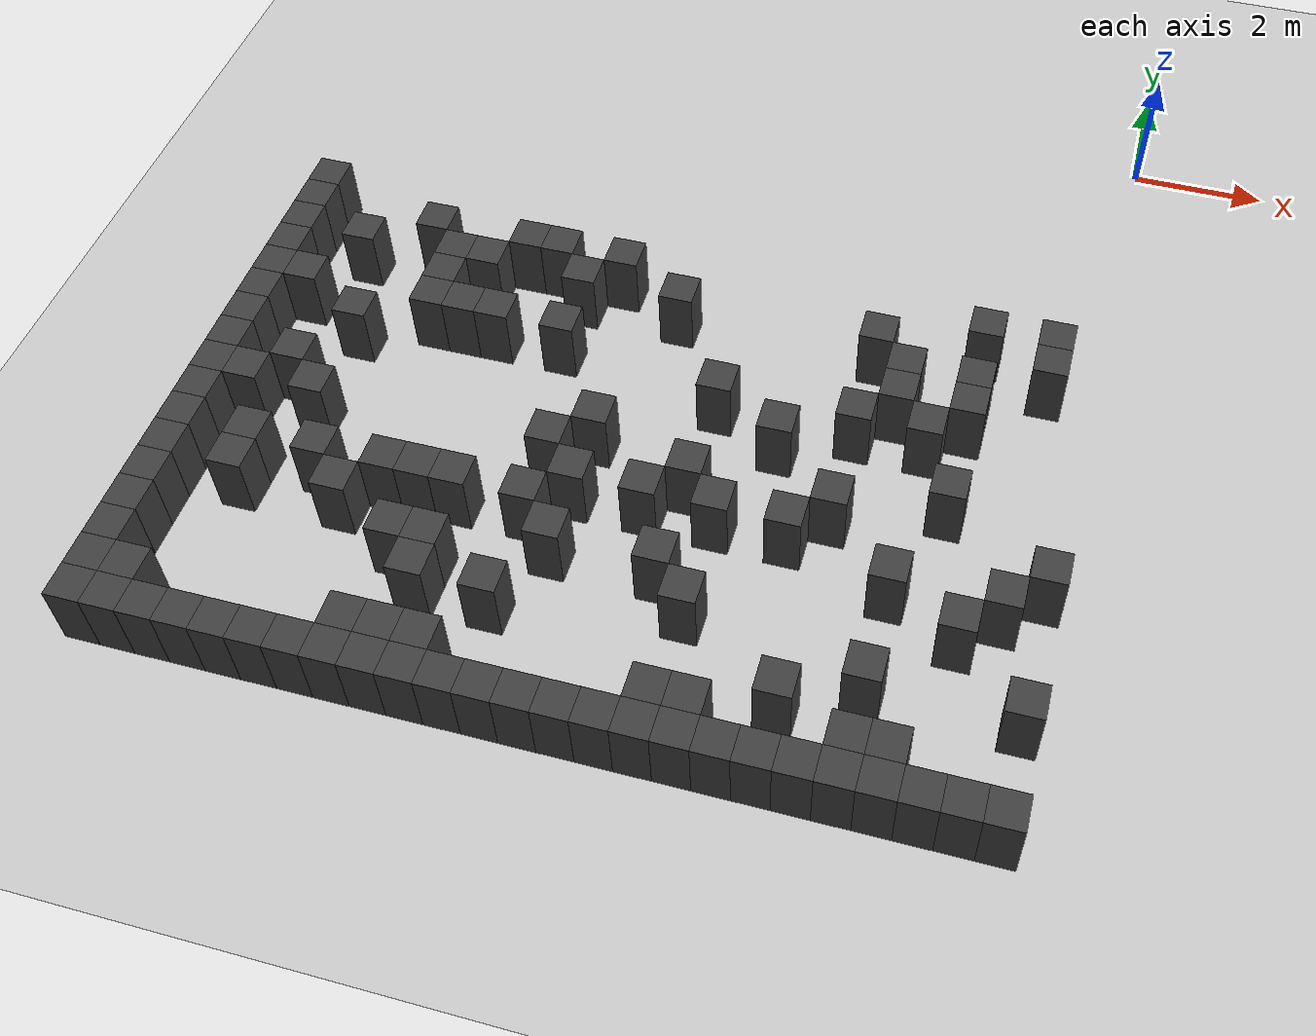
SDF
<sdf version="1.7">
 <world name="map_4225">
  <model name="ground_plane">
   <static>true</static>
   <link name="link">
    <collision name="collision">
     <geometry><plane><normal>0 0 1</normal><size>200 200</size></plane></geometry>
    </collision>
    <visual name="visual">
     <geometry><plane><normal>0 0 1</normal><size>200 200</size></plane></geometry>
     <material><ambient>0.8 0.8 0.8 1</ambient><diffuse>0.8 0.8 0.8 1</diffuse></material>
    </visual>
   </link>
  </model>
  <model name="maze_environment">
   <static>true</static>
   <link name="wall_423">
    <pose>-12.250 -4.250 0.500 0 0 0</pose>
    <collision name="col"><geometry><box><size>0.5 0.5 1.0</size></box></geometry></collision>
    <visual name="vis">
     <geometry><box><size>0.5 0.5 1.0</size></box></geometry>
     <material><ambient>0.15 0.15 0.15 1</ambient><diffuse>0.25 0.25 0.25 1</diffuse></material>
    </visual>
   </link>
   <link name="wall_434">
    <pose>-12.250 -4.750 0.500 0 0 0</pose>
    <collision name="col"><geometry><box><size>0.5 0.5 1.0</size></box></geometry></collision>
    <visual name="vis">
     <geometry><box><size>0.5 0.5 1.0</size></box></geometry>
     <material><ambient>0.15 0.15 0.15 1</ambient><diffuse>0.25 0.25 0.25 1</diffuse></material>
    </visual>
   </link>
   <link name="wall_435">
    <pose>-10.250 -4.750 0.500 0 0 0</pose>
    <collision name="col"><geometry><box><size>0.5 0.5 1.0</size></box></geometry></collision>
    <visual name="vis">
     <geometry><box><size>0.5 0.5 1.0</size></box></geometry>
     <material><ambient>0.15 0.15 0.15 1</ambient><diffuse>0.25 0.25 0.25 1</diffuse></material>
    </visual>
   </link>
   <link name="wall_436">
    <pose>-8.750 -4.750 0.500 0 0 0</pose>
    <collision name="col"><geometry><box><size>0.5 0.5 1.0</size></box></geometry></collision>
    <visual name="vis">
     <geometry><box><size>0.5 0.5 1.0</size></box></geometry>
     <material><ambient>0.15 0.15 0.15 1</ambient><diffuse>0.25 0.25 0.25 1</diffuse></material>
    </visual>
   </link>
   <link name="wall_437">
    <pose>-8.250 -4.750 0.500 0 0 0</pose>
    <collision name="col"><geometry><box><size>0.5 0.5 1.0</size></box></geometry></collision>
    <visual name="vis">
     <geometry><box><size>0.5 0.5 1.0</size></box></geometry>
     <material><ambient>0.15 0.15 0.15 1</ambient><diffuse>0.25 0.25 0.25 1</diffuse></material>
    </visual>
   </link>
   <link name="wall_438">
    <pose>-7.250 -4.750 0.500 0 0 0</pose>
    <collision name="col"><geometry><box><size>0.5 0.5 1.0</size></box></geometry></collision>
    <visual name="vis">
     <geometry><box><size>0.5 0.5 1.0</size></box></geometry>
     <material><ambient>0.15 0.15 0.15 1</ambient><diffuse>0.25 0.25 0.25 1</diffuse></material>
    </visual>
   </link>
   <link name="wall_439">
    <pose>-1.750 -4.750 0.500 0 0 0</pose>
    <collision name="col"><geometry><box><size>0.5 0.5 1.0</size></box></geometry></collision>
    <visual name="vis">
     <geometry><box><size>0.5 0.5 1.0</size></box></geometry>
     <material><ambient>0.15 0.15 0.15 1</ambient><diffuse>0.25 0.25 0.25 1</diffuse></material>
    </visual>
   </link>
   <link name="wall_440">
    <pose>-0.750 -4.750 0.500 0 0 0</pose>
    <collision name="col"><geometry><box><size>0.5 0.5 1.0</size></box></geometry></collision>
    <visual name="vis">
     <geometry><box><size>0.5 0.5 1.0</size></box></geometry>
     <material><ambient>0.15 0.15 0.15 1</ambient><diffuse>0.25 0.25 0.25 1</diffuse></material>
    </visual>
   </link>
   <link name="wall_449">
    <pose>-12.250 -5.250 0.500 0 0 0</pose>
    <collision name="col"><geometry><box><size>0.5 0.5 1.0</size></box></geometry></collision>
    <visual name="vis">
     <geometry><box><size>0.5 0.5 1.0</size></box></geometry>
     <material><ambient>0.15 0.15 0.15 1</ambient><diffuse>0.25 0.25 0.25 1</diffuse></material>
    </visual>
   </link>
   <link name="wall_450">
    <pose>-11.250 -5.250 0.500 0 0 0</pose>
    <collision name="col"><geometry><box><size>0.5 0.5 1.0</size></box></geometry></collision>
    <visual name="vis">
     <geometry><box><size>0.5 0.5 1.0</size></box></geometry>
     <material><ambient>0.15 0.15 0.15 1</ambient><diffuse>0.25 0.25 0.25 1</diffuse></material>
    </visual>
   </link>
   <link name="wall_451">
    <pose>-9.750 -5.250 0.500 0 0 0</pose>
    <collision name="col"><geometry><box><size>0.5 0.5 1.0</size></box></geometry></collision>
    <visual name="vis">
     <geometry><box><size>0.5 0.5 1.0</size></box></geometry>
     <material><ambient>0.15 0.15 0.15 1</ambient><diffuse>0.25 0.25 0.25 1</diffuse></material>
    </visual>
   </link>
   <link name="wall_452">
    <pose>-9.250 -5.250 0.500 0 0 0</pose>
    <collision name="col"><geometry><box><size>0.5 0.5 1.0</size></box></geometry></collision>
    <visual name="vis">
     <geometry><box><size>0.5 0.5 1.0</size></box></geometry>
     <material><ambient>0.15 0.15 0.15 1</ambient><diffuse>0.25 0.25 0.25 1</diffuse></material>
    </visual>
   </link>
   <link name="wall_453">
    <pose>-7.750 -5.250 0.500 0 0 0</pose>
    <collision name="col"><geometry><box><size>0.5 0.5 1.0</size></box></geometry></collision>
    <visual name="vis">
     <geometry><box><size>0.5 0.5 1.0</size></box></geometry>
     <material><ambient>0.15 0.15 0.15 1</ambient><diffuse>0.25 0.25 0.25 1</diffuse></material>
    </visual>
   </link>
   <link name="wall_454">
    <pose>-6.250 -5.250 0.500 0 0 0</pose>
    <collision name="col"><geometry><box><size>0.5 0.5 1.0</size></box></geometry></collision>
    <visual name="vis">
     <geometry><box><size>0.5 0.5 1.0</size></box></geometry>
     <material><ambient>0.15 0.15 0.15 1</ambient><diffuse>0.25 0.25 0.25 1</diffuse></material>
    </visual>
   </link>
   <link name="wall_455">
    <pose>-3.250 -5.250 0.500 0 0 0</pose>
    <collision name="col"><geometry><box><size>0.5 0.5 1.0</size></box></geometry></collision>
    <visual name="vis">
     <geometry><box><size>0.5 0.5 1.0</size></box></geometry>
     <material><ambient>0.15 0.15 0.15 1</ambient><diffuse>0.25 0.25 0.25 1</diffuse></material>
    </visual>
   </link>
   <link name="wall_456">
    <pose>-0.750 -5.250 0.500 0 0 0</pose>
    <collision name="col"><geometry><box><size>0.5 0.5 1.0</size></box></geometry></collision>
    <visual name="vis">
     <geometry><box><size>0.5 0.5 1.0</size></box></geometry>
     <material><ambient>0.15 0.15 0.15 1</ambient><diffuse>0.25 0.25 0.25 1</diffuse></material>
    </visual>
   </link>
   <link name="wall_464">
    <pose>-12.250 -5.750 0.500 0 0 0</pose>
    <collision name="col"><geometry><box><size>0.5 0.5 1.0</size></box></geometry></collision>
    <visual name="vis">
     <geometry><box><size>0.5 0.5 1.0</size></box></geometry>
     <material><ambient>0.15 0.15 0.15 1</ambient><diffuse>0.25 0.25 0.25 1</diffuse></material>
    </visual>
   </link>
   <link name="wall_465">
    <pose>-9.750 -5.750 0.500 0 0 0</pose>
    <collision name="col"><geometry><box><size>0.5 0.5 1.0</size></box></geometry></collision>
    <visual name="vis">
     <geometry><box><size>0.5 0.5 1.0</size></box></geometry>
     <material><ambient>0.15 0.15 0.15 1</ambient><diffuse>0.25 0.25 0.25 1</diffuse></material>
    </visual>
   </link>
   <link name="wall_466">
    <pose>-2.750 -5.750 0.500 0 0 0</pose>
    <collision name="col"><geometry><box><size>0.5 0.5 1.0</size></box></geometry></collision>
    <visual name="vis">
     <geometry><box><size>0.5 0.5 1.0</size></box></geometry>
     <material><ambient>0.15 0.15 0.15 1</ambient><diffuse>0.25 0.25 0.25 1</diffuse></material>
    </visual>
   </link>
   <link name="wall_467">
    <pose>-1.750 -5.750 0.500 0 0 0</pose>
    <collision name="col"><geometry><box><size>0.5 0.5 1.0</size></box></geometry></collision>
    <visual name="vis">
     <geometry><box><size>0.5 0.5 1.0</size></box></geometry>
     <material><ambient>0.15 0.15 0.15 1</ambient><diffuse>0.25 0.25 0.25 1</diffuse></material>
    </visual>
   </link>
   <link name="wall_476">
    <pose>-12.250 -6.250 0.500 0 0 0</pose>
    <collision name="col"><geometry><box><size>0.5 0.5 1.0</size></box></geometry></collision>
    <visual name="vis">
     <geometry><box><size>0.5 0.5 1.0</size></box></geometry>
     <material><ambient>0.15 0.15 0.15 1</ambient><diffuse>0.25 0.25 0.25 1</diffuse></material>
    </visual>
   </link>
   <link name="wall_477">
    <pose>-11.750 -6.250 0.500 0 0 0</pose>
    <collision name="col"><geometry><box><size>0.5 0.5 1.0</size></box></geometry></collision>
    <visual name="vis">
     <geometry><box><size>0.5 0.5 1.0</size></box></geometry>
     <material><ambient>0.15 0.15 0.15 1</ambient><diffuse>0.25 0.25 0.25 1</diffuse></material>
    </visual>
   </link>
   <link name="wall_478">
    <pose>-9.750 -6.250 0.500 0 0 0</pose>
    <collision name="col"><geometry><box><size>0.5 0.5 1.0</size></box></geometry></collision>
    <visual name="vis">
     <geometry><box><size>0.5 0.5 1.0</size></box></geometry>
     <material><ambient>0.15 0.15 0.15 1</ambient><diffuse>0.25 0.25 0.25 1</diffuse></material>
    </visual>
   </link>
   <link name="wall_479">
    <pose>-9.250 -6.250 0.500 0 0 0</pose>
    <collision name="col"><geometry><box><size>0.5 0.5 1.0</size></box></geometry></collision>
    <visual name="vis">
     <geometry><box><size>0.5 0.5 1.0</size></box></geometry>
     <material><ambient>0.15 0.15 0.15 1</ambient><diffuse>0.25 0.25 0.25 1</diffuse></material>
    </visual>
   </link>
   <link name="wall_480">
    <pose>-8.750 -6.250 0.500 0 0 0</pose>
    <collision name="col"><geometry><box><size>0.5 0.5 1.0</size></box></geometry></collision>
    <visual name="vis">
     <geometry><box><size>0.5 0.5 1.0</size></box></geometry>
     <material><ambient>0.15 0.15 0.15 1</ambient><diffuse>0.25 0.25 0.25 1</diffuse></material>
    </visual>
   </link>
   <link name="wall_481">
    <pose>-7.750 -6.250 0.500 0 0 0</pose>
    <collision name="col"><geometry><box><size>0.5 0.5 1.0</size></box></geometry></collision>
    <visual name="vis">
     <geometry><box><size>0.5 0.5 1.0</size></box></geometry>
     <material><ambient>0.15 0.15 0.15 1</ambient><diffuse>0.25 0.25 0.25 1</diffuse></material>
    </visual>
   </link>
   <link name="wall_482">
    <pose>-2.750 -6.250 0.500 0 0 0</pose>
    <collision name="col"><geometry><box><size>0.5 0.5 1.0</size></box></geometry></collision>
    <visual name="vis">
     <geometry><box><size>0.5 0.5 1.0</size></box></geometry>
     <material><ambient>0.15 0.15 0.15 1</ambient><diffuse>0.25 0.25 0.25 1</diffuse></material>
    </visual>
   </link>
   <link name="wall_483">
    <pose>-1.750 -6.250 0.500 0 0 0</pose>
    <collision name="col"><geometry><box><size>0.5 0.5 1.0</size></box></geometry></collision>
    <visual name="vis">
     <geometry><box><size>0.5 0.5 1.0</size></box></geometry>
     <material><ambient>0.15 0.15 0.15 1</ambient><diffuse>0.25 0.25 0.25 1</diffuse></material>
    </visual>
   </link>
   <link name="wall_492">
    <pose>-12.250 -6.750 0.500 0 0 0</pose>
    <collision name="col"><geometry><box><size>0.5 0.5 1.0</size></box></geometry></collision>
    <visual name="vis">
     <geometry><box><size>0.5 0.5 1.0</size></box></geometry>
     <material><ambient>0.15 0.15 0.15 1</ambient><diffuse>0.25 0.25 0.25 1</diffuse></material>
    </visual>
   </link>
   <link name="wall_493">
    <pose>-10.750 -6.750 0.500 0 0 0</pose>
    <collision name="col"><geometry><box><size>0.5 0.5 1.0</size></box></geometry></collision>
    <visual name="vis">
     <geometry><box><size>0.5 0.5 1.0</size></box></geometry>
     <material><ambient>0.15 0.15 0.15 1</ambient><diffuse>0.25 0.25 0.25 1</diffuse></material>
    </visual>
   </link>
   <link name="wall_494">
    <pose>-5.250 -6.750 0.500 0 0 0</pose>
    <collision name="col"><geometry><box><size>0.5 0.5 1.0</size></box></geometry></collision>
    <visual name="vis">
     <geometry><box><size>0.5 0.5 1.0</size></box></geometry>
     <material><ambient>0.15 0.15 0.15 1</ambient><diffuse>0.25 0.25 0.25 1</diffuse></material>
    </visual>
   </link>
   <link name="wall_495">
    <pose>-3.250 -6.750 0.500 0 0 0</pose>
    <collision name="col"><geometry><box><size>0.5 0.5 1.0</size></box></geometry></collision>
    <visual name="vis">
     <geometry><box><size>0.5 0.5 1.0</size></box></geometry>
     <material><ambient>0.15 0.15 0.15 1</ambient><diffuse>0.25 0.25 0.25 1</diffuse></material>
    </visual>
   </link>
   <link name="wall_496">
    <pose>-2.250 -6.750 0.500 0 0 0</pose>
    <collision name="col"><geometry><box><size>0.5 0.5 1.0</size></box></geometry></collision>
    <visual name="vis">
     <geometry><box><size>0.5 0.5 1.0</size></box></geometry>
     <material><ambient>0.15 0.15 0.15 1</ambient><diffuse>0.25 0.25 0.25 1</diffuse></material>
    </visual>
   </link>
   <link name="wall_501">
    <pose>-12.250 -7.250 0.500 0 0 0</pose>
    <collision name="col"><geometry><box><size>0.5 0.5 1.0</size></box></geometry></collision>
    <visual name="vis">
     <geometry><box><size>0.5 0.5 1.0</size></box></geometry>
     <material><ambient>0.15 0.15 0.15 1</ambient><diffuse>0.25 0.25 0.25 1</diffuse></material>
    </visual>
   </link>
   <link name="wall_502">
    <pose>-4.250 -7.250 0.500 0 0 0</pose>
    <collision name="col"><geometry><box><size>0.5 0.5 1.0</size></box></geometry></collision>
    <visual name="vis">
     <geometry><box><size>0.5 0.5 1.0</size></box></geometry>
     <material><ambient>0.15 0.15 0.15 1</ambient><diffuse>0.25 0.25 0.25 1</diffuse></material>
    </visual>
   </link>
   <link name="wall_508">
    <pose>-12.250 -7.750 0.500 0 0 0</pose>
    <collision name="col"><geometry><box><size>0.5 0.5 1.0</size></box></geometry></collision>
    <visual name="vis">
     <geometry><box><size>0.5 0.5 1.0</size></box></geometry>
     <material><ambient>0.15 0.15 0.15 1</ambient><diffuse>0.25 0.25 0.25 1</diffuse></material>
    </visual>
   </link>
   <link name="wall_509">
    <pose>-11.250 -7.750 0.500 0 0 0</pose>
    <collision name="col"><geometry><box><size>0.5 0.5 1.0</size></box></geometry></collision>
    <visual name="vis">
     <geometry><box><size>0.5 0.5 1.0</size></box></geometry>
     <material><ambient>0.15 0.15 0.15 1</ambient><diffuse>0.25 0.25 0.25 1</diffuse></material>
    </visual>
   </link>
   <link name="wall_510">
    <pose>-6.750 -7.750 0.500 0 0 0</pose>
    <collision name="col"><geometry><box><size>0.5 0.5 1.0</size></box></geometry></collision>
    <visual name="vis">
     <geometry><box><size>0.5 0.5 1.0</size></box></geometry>
     <material><ambient>0.15 0.15 0.15 1</ambient><diffuse>0.25 0.25 0.25 1</diffuse></material>
    </visual>
   </link>
   <link name="wall_511">
    <pose>-1.750 -7.750 0.500 0 0 0</pose>
    <collision name="col"><geometry><box><size>0.5 0.5 1.0</size></box></geometry></collision>
    <visual name="vis">
     <geometry><box><size>0.5 0.5 1.0</size></box></geometry>
     <material><ambient>0.15 0.15 0.15 1</ambient><diffuse>0.25 0.25 0.25 1</diffuse></material>
    </visual>
   </link>
   <link name="wall_520">
    <pose>-12.250 -8.250 0.500 0 0 0</pose>
    <collision name="col"><geometry><box><size>0.5 0.5 1.0</size></box></geometry></collision>
    <visual name="vis">
     <geometry><box><size>0.5 0.5 1.0</size></box></geometry>
     <material><ambient>0.15 0.15 0.15 1</ambient><diffuse>0.25 0.25 0.25 1</diffuse></material>
    </visual>
   </link>
   <link name="wall_521">
    <pose>-11.750 -8.250 0.500 0 0 0</pose>
    <collision name="col"><geometry><box><size>0.5 0.5 1.0</size></box></geometry></collision>
    <visual name="vis">
     <geometry><box><size>0.5 0.5 1.0</size></box></geometry>
     <material><ambient>0.15 0.15 0.15 1</ambient><diffuse>0.25 0.25 0.25 1</diffuse></material>
    </visual>
   </link>
   <link name="wall_522">
    <pose>-10.750 -8.250 0.500 0 0 0</pose>
    <collision name="col"><geometry><box><size>0.5 0.5 1.0</size></box></geometry></collision>
    <visual name="vis">
     <geometry><box><size>0.5 0.5 1.0</size></box></geometry>
     <material><ambient>0.15 0.15 0.15 1</ambient><diffuse>0.25 0.25 0.25 1</diffuse></material>
    </visual>
   </link>
   <link name="wall_523">
    <pose>-7.250 -8.250 0.500 0 0 0</pose>
    <collision name="col"><geometry><box><size>0.5 0.5 1.0</size></box></geometry></collision>
    <visual name="vis">
     <geometry><box><size>0.5 0.5 1.0</size></box></geometry>
     <material><ambient>0.15 0.15 0.15 1</ambient><diffuse>0.25 0.25 0.25 1</diffuse></material>
    </visual>
   </link>
   <link name="wall_524">
    <pose>-5.250 -8.250 0.500 0 0 0</pose>
    <collision name="col"><geometry><box><size>0.5 0.5 1.0</size></box></geometry></collision>
    <visual name="vis">
     <geometry><box><size>0.5 0.5 1.0</size></box></geometry>
     <material><ambient>0.15 0.15 0.15 1</ambient><diffuse>0.25 0.25 0.25 1</diffuse></material>
    </visual>
   </link>
   <link name="wall_525">
    <pose>-3.250 -8.250 0.500 0 0 0</pose>
    <collision name="col"><geometry><box><size>0.5 0.5 1.0</size></box></geometry></collision>
    <visual name="vis">
     <geometry><box><size>0.5 0.5 1.0</size></box></geometry>
     <material><ambient>0.15 0.15 0.15 1</ambient><diffuse>0.25 0.25 0.25 1</diffuse></material>
    </visual>
   </link>
   <link name="wall_529">
    <pose>-12.250 -8.750 0.500 0 0 0</pose>
    <collision name="col"><geometry><box><size>0.5 0.5 1.0</size></box></geometry></collision>
    <visual name="vis">
     <geometry><box><size>0.5 0.5 1.0</size></box></geometry>
     <material><ambient>0.15 0.15 0.15 1</ambient><diffuse>0.25 0.25 0.25 1</diffuse></material>
    </visual>
   </link>
   <link name="wall_530">
    <pose>-6.750 -8.750 0.500 0 0 0</pose>
    <collision name="col"><geometry><box><size>0.5 0.5 1.0</size></box></geometry></collision>
    <visual name="vis">
     <geometry><box><size>0.5 0.5 1.0</size></box></geometry>
     <material><ambient>0.15 0.15 0.15 1</ambient><diffuse>0.25 0.25 0.25 1</diffuse></material>
    </visual>
   </link>
   <link name="wall_531">
    <pose>-5.750 -8.750 0.500 0 0 0</pose>
    <collision name="col"><geometry><box><size>0.5 0.5 1.0</size></box></geometry></collision>
    <visual name="vis">
     <geometry><box><size>0.5 0.5 1.0</size></box></geometry>
     <material><ambient>0.15 0.15 0.15 1</ambient><diffuse>0.25 0.25 0.25 1</diffuse></material>
    </visual>
   </link>
   <link name="wall_532">
    <pose>-4.750 -8.750 0.500 0 0 0</pose>
    <collision name="col"><geometry><box><size>0.5 0.5 1.0</size></box></geometry></collision>
    <visual name="vis">
     <geometry><box><size>0.5 0.5 1.0</size></box></geometry>
     <material><ambient>0.15 0.15 0.15 1</ambient><diffuse>0.25 0.25 0.25 1</diffuse></material>
    </visual>
   </link>
   <link name="wall_533">
    <pose>-3.750 -8.750 0.500 0 0 0</pose>
    <collision name="col"><geometry><box><size>0.5 0.5 1.0</size></box></geometry></collision>
    <visual name="vis">
     <geometry><box><size>0.5 0.5 1.0</size></box></geometry>
     <material><ambient>0.15 0.15 0.15 1</ambient><diffuse>0.25 0.25 0.25 1</diffuse></material>
    </visual>
   </link>
   <link name="wall_534">
    <pose>-0.250 -8.750 0.500 0 0 0</pose>
    <collision name="col"><geometry><box><size>0.5 0.5 1.0</size></box></geometry></collision>
    <visual name="vis">
     <geometry><box><size>0.5 0.5 1.0</size></box></geometry>
     <material><ambient>0.15 0.15 0.15 1</ambient><diffuse>0.25 0.25 0.25 1</diffuse></material>
    </visual>
   </link>
   <link name="wall_541">
    <pose>-12.250 -9.250 0.500 0 0 0</pose>
    <collision name="col"><geometry><box><size>0.5 0.5 1.0</size></box></geometry></collision>
    <visual name="vis">
     <geometry><box><size>0.5 0.5 1.0</size></box></geometry>
     <material><ambient>0.15 0.15 0.15 1</ambient><diffuse>0.25 0.25 0.25 1</diffuse></material>
    </visual>
   </link>
   <link name="wall_542">
    <pose>-11.250 -9.250 0.500 0 0 0</pose>
    <collision name="col"><geometry><box><size>0.5 0.5 1.0</size></box></geometry></collision>
    <visual name="vis">
     <geometry><box><size>0.5 0.5 1.0</size></box></geometry>
     <material><ambient>0.15 0.15 0.15 1</ambient><diffuse>0.25 0.25 0.25 1</diffuse></material>
    </visual>
   </link>
   <link name="wall_543">
    <pose>-10.250 -9.250 0.500 0 0 0</pose>
    <collision name="col"><geometry><box><size>0.5 0.5 1.0</size></box></geometry></collision>
    <visual name="vis">
     <geometry><box><size>0.5 0.5 1.0</size></box></geometry>
     <material><ambient>0.15 0.15 0.15 1</ambient><diffuse>0.25 0.25 0.25 1</diffuse></material>
    </visual>
   </link>
   <link name="wall_544">
    <pose>-9.250 -9.250 0.500 0 0 0</pose>
    <collision name="col"><geometry><box><size>0.5 0.5 1.0</size></box></geometry></collision>
    <visual name="vis">
     <geometry><box><size>0.5 0.5 1.0</size></box></geometry>
     <material><ambient>0.15 0.15 0.15 1</ambient><diffuse>0.25 0.25 0.25 1</diffuse></material>
    </visual>
   </link>
   <link name="wall_545">
    <pose>-8.750 -9.250 0.500 0 0 0</pose>
    <collision name="col"><geometry><box><size>0.5 0.5 1.0</size></box></geometry></collision>
    <visual name="vis">
     <geometry><box><size>0.5 0.5 1.0</size></box></geometry>
     <material><ambient>0.15 0.15 0.15 1</ambient><diffuse>0.25 0.25 0.25 1</diffuse></material>
    </visual>
   </link>
   <link name="wall_546">
    <pose>-8.250 -9.250 0.500 0 0 0</pose>
    <collision name="col"><geometry><box><size>0.5 0.5 1.0</size></box></geometry></collision>
    <visual name="vis">
     <geometry><box><size>0.5 0.5 1.0</size></box></geometry>
     <material><ambient>0.15 0.15 0.15 1</ambient><diffuse>0.25 0.25 0.25 1</diffuse></material>
    </visual>
   </link>
   <link name="wall_547">
    <pose>-7.250 -9.250 0.500 0 0 0</pose>
    <collision name="col"><geometry><box><size>0.5 0.5 1.0</size></box></geometry></collision>
    <visual name="vis">
     <geometry><box><size>0.5 0.5 1.0</size></box></geometry>
     <material><ambient>0.15 0.15 0.15 1</ambient><diffuse>0.25 0.25 0.25 1</diffuse></material>
    </visual>
   </link>
   <link name="wall_548">
    <pose>-2.250 -9.250 0.500 0 0 0</pose>
    <collision name="col"><geometry><box><size>0.5 0.5 1.0</size></box></geometry></collision>
    <visual name="vis">
     <geometry><box><size>0.5 0.5 1.0</size></box></geometry>
     <material><ambient>0.15 0.15 0.15 1</ambient><diffuse>0.25 0.25 0.25 1</diffuse></material>
    </visual>
   </link>
   <link name="wall_549">
    <pose>-0.750 -9.250 0.500 0 0 0</pose>
    <collision name="col"><geometry><box><size>0.5 0.5 1.0</size></box></geometry></collision>
    <visual name="vis">
     <geometry><box><size>0.5 0.5 1.0</size></box></geometry>
     <material><ambient>0.15 0.15 0.15 1</ambient><diffuse>0.25 0.25 0.25 1</diffuse></material>
    </visual>
   </link>
   <link name="wall_556">
    <pose>-12.250 -9.750 0.500 0 0 0</pose>
    <collision name="col"><geometry><box><size>0.5 0.5 1.0</size></box></geometry></collision>
    <visual name="vis">
     <geometry><box><size>0.5 0.5 1.0</size></box></geometry>
     <material><ambient>0.15 0.15 0.15 1</ambient><diffuse>0.25 0.25 0.25 1</diffuse></material>
    </visual>
   </link>
   <link name="wall_557">
    <pose>-11.250 -9.750 0.500 0 0 0</pose>
    <collision name="col"><geometry><box><size>0.5 0.5 1.0</size></box></geometry></collision>
    <visual name="vis">
     <geometry><box><size>0.5 0.5 1.0</size></box></geometry>
     <material><ambient>0.15 0.15 0.15 1</ambient><diffuse>0.25 0.25 0.25 1</diffuse></material>
    </visual>
   </link>
   <link name="wall_558">
    <pose>-9.750 -9.750 0.500 0 0 0</pose>
    <collision name="col"><geometry><box><size>0.5 0.5 1.0</size></box></geometry></collision>
    <visual name="vis">
     <geometry><box><size>0.5 0.5 1.0</size></box></geometry>
     <material><ambient>0.15 0.15 0.15 1</ambient><diffuse>0.25 0.25 0.25 1</diffuse></material>
    </visual>
   </link>
   <link name="wall_559">
    <pose>-6.750 -9.750 0.500 0 0 0</pose>
    <collision name="col"><geometry><box><size>0.5 0.5 1.0</size></box></geometry></collision>
    <visual name="vis">
     <geometry><box><size>0.5 0.5 1.0</size></box></geometry>
     <material><ambient>0.15 0.15 0.15 1</ambient><diffuse>0.25 0.25 0.25 1</diffuse></material>
    </visual>
   </link>
   <link name="wall_560">
    <pose>-5.250 -9.750 0.500 0 0 0</pose>
    <collision name="col"><geometry><box><size>0.5 0.5 1.0</size></box></geometry></collision>
    <visual name="vis">
     <geometry><box><size>0.5 0.5 1.0</size></box></geometry>
     <material><ambient>0.15 0.15 0.15 1</ambient><diffuse>0.25 0.25 0.25 1</diffuse></material>
    </visual>
   </link>
   <link name="wall_561">
    <pose>-1.250 -9.750 0.500 0 0 0</pose>
    <collision name="col"><geometry><box><size>0.5 0.5 1.0</size></box></geometry></collision>
    <visual name="vis">
     <geometry><box><size>0.5 0.5 1.0</size></box></geometry>
     <material><ambient>0.15 0.15 0.15 1</ambient><diffuse>0.25 0.25 0.25 1</diffuse></material>
    </visual>
   </link>
   <link name="wall_570">
    <pose>-12.250 -10.250 0.500 0 0 0</pose>
    <collision name="col"><geometry><box><size>0.5 0.5 1.0</size></box></geometry></collision>
    <visual name="vis">
     <geometry><box><size>0.5 0.5 1.0</size></box></geometry>
     <material><ambient>0.15 0.15 0.15 1</ambient><diffuse>0.25 0.25 0.25 1</diffuse></material>
    </visual>
   </link>
   <link name="wall_571">
    <pose>-8.750 -10.250 0.500 0 0 0</pose>
    <collision name="col"><geometry><box><size>0.5 0.5 1.0</size></box></geometry></collision>
    <visual name="vis">
     <geometry><box><size>0.5 0.5 1.0</size></box></geometry>
     <material><ambient>0.15 0.15 0.15 1</ambient><diffuse>0.25 0.25 0.25 1</diffuse></material>
    </visual>
   </link>
   <link name="wall_572">
    <pose>-8.250 -10.250 0.500 0 0 0</pose>
    <collision name="col"><geometry><box><size>0.5 0.5 1.0</size></box></geometry></collision>
    <visual name="vis">
     <geometry><box><size>0.5 0.5 1.0</size></box></geometry>
     <material><ambient>0.15 0.15 0.15 1</ambient><diffuse>0.25 0.25 0.25 1</diffuse></material>
    </visual>
   </link>
   <link name="wall_573">
    <pose>-4.750 -10.250 0.500 0 0 0</pose>
    <collision name="col"><geometry><box><size>0.5 0.5 1.0</size></box></geometry></collision>
    <visual name="vis">
     <geometry><box><size>0.5 0.5 1.0</size></box></geometry>
     <material><ambient>0.15 0.15 0.15 1</ambient><diffuse>0.25 0.25 0.25 1</diffuse></material>
    </visual>
   </link>
   <link name="wall_578">
    <pose>-12.250 -10.750 0.500 0 0 0</pose>
    <collision name="col"><geometry><box><size>0.5 0.5 1.0</size></box></geometry></collision>
    <visual name="vis">
     <geometry><box><size>0.5 0.5 1.0</size></box></geometry>
     <material><ambient>0.15 0.15 0.15 1</ambient><diffuse>0.25 0.25 0.25 1</diffuse></material>
    </visual>
   </link>
   <link name="wall_579">
    <pose>-8.250 -10.750 0.500 0 0 0</pose>
    <collision name="col"><geometry><box><size>0.5 0.5 1.0</size></box></geometry></collision>
    <visual name="vis">
     <geometry><box><size>0.5 0.5 1.0</size></box></geometry>
     <material><ambient>0.15 0.15 0.15 1</ambient><diffuse>0.25 0.25 0.25 1</diffuse></material>
    </visual>
   </link>
   <link name="wall_580">
    <pose>-7.250 -10.750 0.500 0 0 0</pose>
    <collision name="col"><geometry><box><size>0.5 0.5 1.0</size></box></geometry></collision>
    <visual name="vis">
     <geometry><box><size>0.5 0.5 1.0</size></box></geometry>
     <material><ambient>0.15 0.15 0.15 1</ambient><diffuse>0.25 0.25 0.25 1</diffuse></material>
    </visual>
   </link>
   <link name="wall_581">
    <pose>-2.250 -10.750 0.500 0 0 0</pose>
    <collision name="col"><geometry><box><size>0.5 0.5 1.0</size></box></geometry></collision>
    <visual name="vis">
     <geometry><box><size>0.5 0.5 1.0</size></box></geometry>
     <material><ambient>0.15 0.15 0.15 1</ambient><diffuse>0.25 0.25 0.25 1</diffuse></material>
    </visual>
   </link>
   <link name="wall_582">
    <pose>-0.250 -10.750 0.500 0 0 0</pose>
    <collision name="col"><geometry><box><size>0.5 0.5 1.0</size></box></geometry></collision>
    <visual name="vis">
     <geometry><box><size>0.5 0.5 1.0</size></box></geometry>
     <material><ambient>0.15 0.15 0.15 1</ambient><diffuse>0.25 0.25 0.25 1</diffuse></material>
    </visual>
   </link>
   <link name="wall_593">
    <pose>-12.250 -11.250 0.500 0 0 0</pose>
    <collision name="col"><geometry><box><size>0.5 0.5 1.0</size></box></geometry></collision>
    <visual name="vis">
     <geometry><box><size>0.5 0.5 1.0</size></box></geometry>
     <material><ambient>0.15 0.15 0.15 1</ambient><diffuse>0.25 0.25 0.25 1</diffuse></material>
    </visual>
   </link>
   <link name="wall_594">
    <pose>-3.250 -11.250 0.500 0 0 0</pose>
    <collision name="col"><geometry><box><size>0.5 0.5 1.0</size></box></geometry></collision>
    <visual name="vis">
     <geometry><box><size>0.5 0.5 1.0</size></box></geometry>
     <material><ambient>0.15 0.15 0.15 1</ambient><diffuse>0.25 0.25 0.25 1</diffuse></material>
    </visual>
   </link>
   <link name="wall_603">
    <pose>-12.250 -11.750 0.500 0 0 0</pose>
    <collision name="col"><geometry><box><size>0.5 0.5 1.0</size></box></geometry></collision>
    <visual name="vis">
     <geometry><box><size>0.5 0.5 1.0</size></box></geometry>
     <material><ambient>0.15 0.15 0.15 1</ambient><diffuse>0.25 0.25 0.25 1</diffuse></material>
    </visual>
   </link>
   <link name="wall_604">
    <pose>-11.750 -11.750 0.500 0 0 0</pose>
    <collision name="col"><geometry><box><size>0.5 0.5 1.0</size></box></geometry></collision>
    <visual name="vis">
     <geometry><box><size>0.5 0.5 1.0</size></box></geometry>
     <material><ambient>0.15 0.15 0.15 1</ambient><diffuse>0.25 0.25 0.25 1</diffuse></material>
    </visual>
   </link>
   <link name="wall_605">
    <pose>-8.750 -11.750 0.500 0 0 0</pose>
    <collision name="col"><geometry><box><size>0.5 0.5 1.0</size></box></geometry></collision>
    <visual name="vis">
     <geometry><box><size>0.5 0.5 1.0</size></box></geometry>
     <material><ambient>0.15 0.15 0.15 1</ambient><diffuse>0.25 0.25 0.25 1</diffuse></material>
    </visual>
   </link>
   <link name="wall_606">
    <pose>-8.250 -11.750 0.500 0 0 0</pose>
    <collision name="col"><geometry><box><size>0.5 0.5 1.0</size></box></geometry></collision>
    <visual name="vis">
     <geometry><box><size>0.5 0.5 1.0</size></box></geometry>
     <material><ambient>0.15 0.15 0.15 1</ambient><diffuse>0.25 0.25 0.25 1</diffuse></material>
    </visual>
   </link>
   <link name="wall_607">
    <pose>-7.750 -11.750 0.500 0 0 0</pose>
    <collision name="col"><geometry><box><size>0.5 0.5 1.0</size></box></geometry></collision>
    <visual name="vis">
     <geometry><box><size>0.5 0.5 1.0</size></box></geometry>
     <material><ambient>0.15 0.15 0.15 1</ambient><diffuse>0.25 0.25 0.25 1</diffuse></material>
    </visual>
   </link>
   <link name="wall_608">
    <pose>-4.750 -11.750 0.500 0 0 0</pose>
    <collision name="col"><geometry><box><size>0.5 0.5 1.0</size></box></geometry></collision>
    <visual name="vis">
     <geometry><box><size>0.5 0.5 1.0</size></box></geometry>
     <material><ambient>0.15 0.15 0.15 1</ambient><diffuse>0.25 0.25 0.25 1</diffuse></material>
    </visual>
   </link>
   <link name="wall_609">
    <pose>-4.250 -11.750 0.500 0 0 0</pose>
    <collision name="col"><geometry><box><size>0.5 0.5 1.0</size></box></geometry></collision>
    <visual name="vis">
     <geometry><box><size>0.5 0.5 1.0</size></box></geometry>
     <material><ambient>0.15 0.15 0.15 1</ambient><diffuse>0.25 0.25 0.25 1</diffuse></material>
    </visual>
   </link>
   <link name="wall_610">
    <pose>-2.250 -11.750 0.500 0 0 0</pose>
    <collision name="col"><geometry><box><size>0.5 0.5 1.0</size></box></geometry></collision>
    <visual name="vis">
     <geometry><box><size>0.5 0.5 1.0</size></box></geometry>
     <material><ambient>0.15 0.15 0.15 1</ambient><diffuse>0.25 0.25 0.25 1</diffuse></material>
    </visual>
   </link>
   <link name="wall_611">
    <pose>-1.750 -11.750 0.500 0 0 0</pose>
    <collision name="col"><geometry><box><size>0.5 0.5 1.0</size></box></geometry></collision>
    <visual name="vis">
     <geometry><box><size>0.5 0.5 1.0</size></box></geometry>
     <material><ambient>0.15 0.15 0.15 1</ambient><diffuse>0.25 0.25 0.25 1</diffuse></material>
    </visual>
   </link>
   <link name="wall_616">
    <pose>-12.250 -12.250 0.500 0 0 0</pose>
    <collision name="col"><geometry><box><size>0.5 0.5 1.0</size></box></geometry></collision>
    <visual name="vis">
     <geometry><box><size>0.5 0.5 1.0</size></box></geometry>
     <material><ambient>0.15 0.15 0.15 1</ambient><diffuse>0.25 0.25 0.25 1</diffuse></material>
    </visual>
   </link>
   <link name="wall_617">
    <pose>-11.750 -12.250 0.500 0 0 0</pose>
    <collision name="col"><geometry><box><size>0.5 0.5 1.0</size></box></geometry></collision>
    <visual name="vis">
     <geometry><box><size>0.5 0.5 1.0</size></box></geometry>
     <material><ambient>0.15 0.15 0.15 1</ambient><diffuse>0.25 0.25 0.25 1</diffuse></material>
    </visual>
   </link>
   <link name="wall_618">
    <pose>-11.250 -12.250 0.500 0 0 0</pose>
    <collision name="col"><geometry><box><size>0.5 0.5 1.0</size></box></geometry></collision>
    <visual name="vis">
     <geometry><box><size>0.5 0.5 1.0</size></box></geometry>
     <material><ambient>0.15 0.15 0.15 1</ambient><diffuse>0.25 0.25 0.25 1</diffuse></material>
    </visual>
   </link>
   <link name="wall_619">
    <pose>-10.750 -12.250 0.500 0 0 0</pose>
    <collision name="col"><geometry><box><size>0.5 0.5 1.0</size></box></geometry></collision>
    <visual name="vis">
     <geometry><box><size>0.5 0.5 1.0</size></box></geometry>
     <material><ambient>0.15 0.15 0.15 1</ambient><diffuse>0.25 0.25 0.25 1</diffuse></material>
    </visual>
   </link>
   <link name="wall_620">
    <pose>-10.250 -12.250 0.500 0 0 0</pose>
    <collision name="col"><geometry><box><size>0.5 0.5 1.0</size></box></geometry></collision>
    <visual name="vis">
     <geometry><box><size>0.5 0.5 1.0</size></box></geometry>
     <material><ambient>0.15 0.15 0.15 1</ambient><diffuse>0.25 0.25 0.25 1</diffuse></material>
    </visual>
   </link>
   <link name="wall_621">
    <pose>-9.750 -12.250 0.500 0 0 0</pose>
    <collision name="col"><geometry><box><size>0.5 0.5 1.0</size></box></geometry></collision>
    <visual name="vis">
     <geometry><box><size>0.5 0.5 1.0</size></box></geometry>
     <material><ambient>0.15 0.15 0.15 1</ambient><diffuse>0.25 0.25 0.25 1</diffuse></material>
    </visual>
   </link>
   <link name="wall_622">
    <pose>-9.250 -12.250 0.500 0 0 0</pose>
    <collision name="col"><geometry><box><size>0.5 0.5 1.0</size></box></geometry></collision>
    <visual name="vis">
     <geometry><box><size>0.5 0.5 1.0</size></box></geometry>
     <material><ambient>0.15 0.15 0.15 1</ambient><diffuse>0.25 0.25 0.25 1</diffuse></material>
    </visual>
   </link>
   <link name="wall_623">
    <pose>-8.750 -12.250 0.500 0 0 0</pose>
    <collision name="col"><geometry><box><size>0.5 0.5 1.0</size></box></geometry></collision>
    <visual name="vis">
     <geometry><box><size>0.5 0.5 1.0</size></box></geometry>
     <material><ambient>0.15 0.15 0.15 1</ambient><diffuse>0.25 0.25 0.25 1</diffuse></material>
    </visual>
   </link>
   <link name="wall_624">
    <pose>-8.250 -12.250 0.500 0 0 0</pose>
    <collision name="col"><geometry><box><size>0.5 0.5 1.0</size></box></geometry></collision>
    <visual name="vis">
     <geometry><box><size>0.5 0.5 1.0</size></box></geometry>
     <material><ambient>0.15 0.15 0.15 1</ambient><diffuse>0.25 0.25 0.25 1</diffuse></material>
    </visual>
   </link>
   <link name="wall_625">
    <pose>-7.750 -12.250 0.500 0 0 0</pose>
    <collision name="col"><geometry><box><size>0.5 0.5 1.0</size></box></geometry></collision>
    <visual name="vis">
     <geometry><box><size>0.5 0.5 1.0</size></box></geometry>
     <material><ambient>0.15 0.15 0.15 1</ambient><diffuse>0.25 0.25 0.25 1</diffuse></material>
    </visual>
   </link>
   <link name="wall_626">
    <pose>-7.250 -12.250 0.500 0 0 0</pose>
    <collision name="col"><geometry><box><size>0.5 0.5 1.0</size></box></geometry></collision>
    <visual name="vis">
     <geometry><box><size>0.5 0.5 1.0</size></box></geometry>
     <material><ambient>0.15 0.15 0.15 1</ambient><diffuse>0.25 0.25 0.25 1</diffuse></material>
    </visual>
   </link>
   <link name="wall_627">
    <pose>-6.750 -12.250 0.500 0 0 0</pose>
    <collision name="col"><geometry><box><size>0.5 0.5 1.0</size></box></geometry></collision>
    <visual name="vis">
     <geometry><box><size>0.5 0.5 1.0</size></box></geometry>
     <material><ambient>0.15 0.15 0.15 1</ambient><diffuse>0.25 0.25 0.25 1</diffuse></material>
    </visual>
   </link>
   <link name="wall_628">
    <pose>-6.250 -12.250 0.500 0 0 0</pose>
    <collision name="col"><geometry><box><size>0.5 0.5 1.0</size></box></geometry></collision>
    <visual name="vis">
     <geometry><box><size>0.5 0.5 1.0</size></box></geometry>
     <material><ambient>0.15 0.15 0.15 1</ambient><diffuse>0.25 0.25 0.25 1</diffuse></material>
    </visual>
   </link>
   <link name="wall_629">
    <pose>-5.750 -12.250 0.500 0 0 0</pose>
    <collision name="col"><geometry><box><size>0.5 0.5 1.0</size></box></geometry></collision>
    <visual name="vis">
     <geometry><box><size>0.5 0.5 1.0</size></box></geometry>
     <material><ambient>0.15 0.15 0.15 1</ambient><diffuse>0.25 0.25 0.25 1</diffuse></material>
    </visual>
   </link>
   <link name="wall_630">
    <pose>-5.250 -12.250 0.500 0 0 0</pose>
    <collision name="col"><geometry><box><size>0.5 0.5 1.0</size></box></geometry></collision>
    <visual name="vis">
     <geometry><box><size>0.5 0.5 1.0</size></box></geometry>
     <material><ambient>0.15 0.15 0.15 1</ambient><diffuse>0.25 0.25 0.25 1</diffuse></material>
    </visual>
   </link>
   <link name="wall_631">
    <pose>-4.750 -12.250 0.500 0 0 0</pose>
    <collision name="col"><geometry><box><size>0.5 0.5 1.0</size></box></geometry></collision>
    <visual name="vis">
     <geometry><box><size>0.5 0.5 1.0</size></box></geometry>
     <material><ambient>0.15 0.15 0.15 1</ambient><diffuse>0.25 0.25 0.25 1</diffuse></material>
    </visual>
   </link>
   <link name="wall_632">
    <pose>-4.250 -12.250 0.500 0 0 0</pose>
    <collision name="col"><geometry><box><size>0.5 0.5 1.0</size></box></geometry></collision>
    <visual name="vis">
     <geometry><box><size>0.5 0.5 1.0</size></box></geometry>
     <material><ambient>0.15 0.15 0.15 1</ambient><diffuse>0.25 0.25 0.25 1</diffuse></material>
    </visual>
   </link>
   <link name="wall_633">
    <pose>-3.750 -12.250 0.500 0 0 0</pose>
    <collision name="col"><geometry><box><size>0.5 0.5 1.0</size></box></geometry></collision>
    <visual name="vis">
     <geometry><box><size>0.5 0.5 1.0</size></box></geometry>
     <material><ambient>0.15 0.15 0.15 1</ambient><diffuse>0.25 0.25 0.25 1</diffuse></material>
    </visual>
   </link>
   <link name="wall_634">
    <pose>-3.250 -12.250 0.500 0 0 0</pose>
    <collision name="col"><geometry><box><size>0.5 0.5 1.0</size></box></geometry></collision>
    <visual name="vis">
     <geometry><box><size>0.5 0.5 1.0</size></box></geometry>
     <material><ambient>0.15 0.15 0.15 1</ambient><diffuse>0.25 0.25 0.25 1</diffuse></material>
    </visual>
   </link>
   <link name="wall_635">
    <pose>-2.750 -12.250 0.500 0 0 0</pose>
    <collision name="col"><geometry><box><size>0.5 0.5 1.0</size></box></geometry></collision>
    <visual name="vis">
     <geometry><box><size>0.5 0.5 1.0</size></box></geometry>
     <material><ambient>0.15 0.15 0.15 1</ambient><diffuse>0.25 0.25 0.25 1</diffuse></material>
    </visual>
   </link>
   <link name="wall_636">
    <pose>-2.250 -12.250 0.500 0 0 0</pose>
    <collision name="col"><geometry><box><size>0.5 0.5 1.0</size></box></geometry></collision>
    <visual name="vis">
     <geometry><box><size>0.5 0.5 1.0</size></box></geometry>
     <material><ambient>0.15 0.15 0.15 1</ambient><diffuse>0.25 0.25 0.25 1</diffuse></material>
    </visual>
   </link>
   <link name="wall_637">
    <pose>-1.750 -12.250 0.500 0 0 0</pose>
    <collision name="col"><geometry><box><size>0.5 0.5 1.0</size></box></geometry></collision>
    <visual name="vis">
     <geometry><box><size>0.5 0.5 1.0</size></box></geometry>
     <material><ambient>0.15 0.15 0.15 1</ambient><diffuse>0.25 0.25 0.25 1</diffuse></material>
    </visual>
   </link>
   <link name="wall_638">
    <pose>-1.250 -12.250 0.500 0 0 0</pose>
    <collision name="col"><geometry><box><size>0.5 0.5 1.0</size></box></geometry></collision>
    <visual name="vis">
     <geometry><box><size>0.5 0.5 1.0</size></box></geometry>
     <material><ambient>0.15 0.15 0.15 1</ambient><diffuse>0.25 0.25 0.25 1</diffuse></material>
    </visual>
   </link>
   <link name="wall_639">
    <pose>-0.750 -12.250 0.500 0 0 0</pose>
    <collision name="col"><geometry><box><size>0.5 0.5 1.0</size></box></geometry></collision>
    <visual name="vis">
     <geometry><box><size>0.5 0.5 1.0</size></box></geometry>
     <material><ambient>0.15 0.15 0.15 1</ambient><diffuse>0.25 0.25 0.25 1</diffuse></material>
    </visual>
   </link>
   <link name="wall_640">
    <pose>-0.250 -12.250 0.500 0 0 0</pose>
    <collision name="col"><geometry><box><size>0.5 0.5 1.0</size></box></geometry></collision>
    <visual name="vis">
     <geometry><box><size>0.5 0.5 1.0</size></box></geometry>
     <material><ambient>0.15 0.15 0.15 1</ambient><diffuse>0.25 0.25 0.25 1</diffuse></material>
    </visual>
   </link>
  </model>
 </world>
</sdf>
